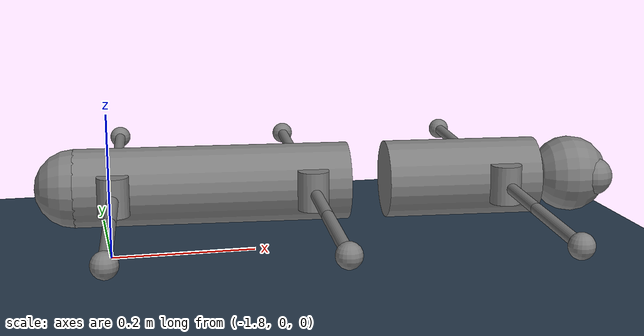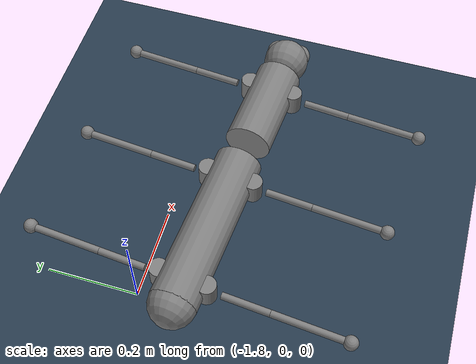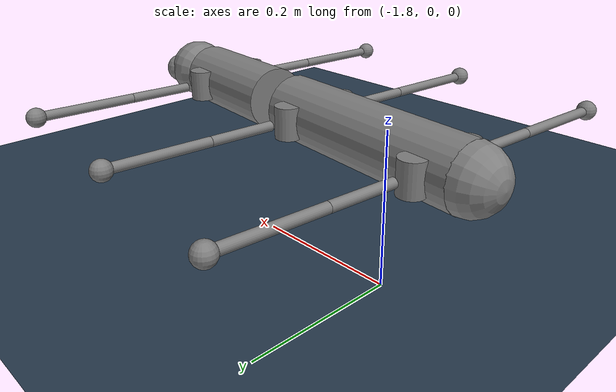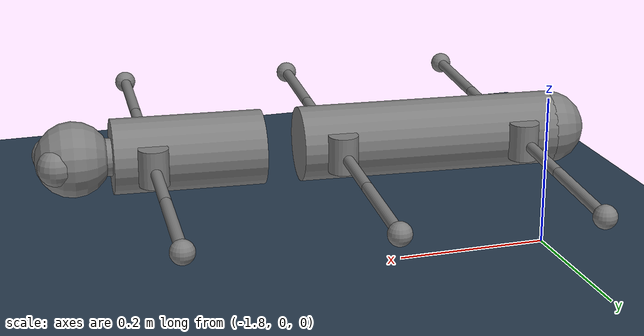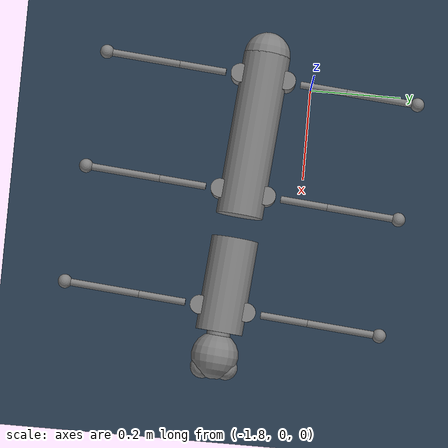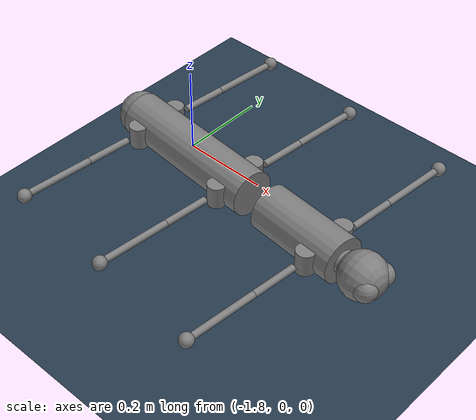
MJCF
<mujoco>
    <compiler meshdir="asset" texturedir="asset" />
    <statistic extent="1.5" meansize=".05" />

    <option timestep="0.005" jacobian="sparse" />

    <visual>
        <rgba haze="0.15 0.25 0.35 1" />
        <quality shadowsize="4096" />
        <map stiffness="700" shadowscale="0.5" fogstart="10" fogend="15" zfar="40" haze="0.3" />
    </visual>

    <asset>
        <texture type="skybox" builtin="gradient" rgb1="0.3 0.5 0.7" rgb2="0 0 0" width="512"
            height="512" />
        <texture name="texplane" type="2d" builtin="checker" rgb1=".2 .3 .4" rgb2=".1 0.15 0.2"
            width="512" height="512" mark="cross" markrgb=".8 .8 .8" />
        <material name="matplane" reflectance="0.3" texture="texplane" texrepeat="1 1"
            texuniform="true" />
    </asset>

    <worldbody>
        <geom name="Body" size="0.05 0.1" pos="-1.34983 -0.14564 0.125"
            quat="-0.706436 0.0308445 0.706432 0.0308437" type="cylinder" />
        <geom size="0.025" pos="-1.17538 -0.133716 0.124975"
            quat="0.923879 -9.37379e-08 -2.26303e-07 0.382684" />
        <geom size="0.05" pos="-1.20038 -0.158716 0.124975"
            quat="-0.706436 0.0308445 0.706432 0.0308438" />
        <geom size="0.025 0.025" pos="-1.25019 -0.154358 0.124976"
            quat="0.70643 0.0308438 0.706438 -0.0308445" type="cylinder" />
        <geom size="0.025" pos="-1.17538 -0.183716 0.124975"
            quat="0.92388 9.3738e-08 -2.26303e-07 -0.382683" />
        <body name="Bottom" pos="-1.47436 -0.134746 0.125001"
            quat="-0.706434 -0.706433 0.0308405 0.0308474">
            <inertial pos="-0.230605 -4e-06 0" quat="1 0 1.12974e-06 0" mass="0.005"
                diaginertia="6.62214e-05 6.62214e-05 5.87786e-06" />
            <joint name="Body_joint" pos="0 0 0" axis="0 0 1" />
            <geom name="Bottom" size="0.05 0.175" pos="-0.2 0 0"
                quat="-0.499999 0.499999 0.500001 -0.500001" type="cylinder" />
            <geom size="0.05" pos="-0.374975 -2.3e-05 1e-06"
                quat="0.305816 0.637558 0.305813 0.637554" />
            <geom size="0.025 0.025" pos="-0.324975 -2.3e-05 1e-06"
                quat="-0.305814 -0.637556 0.305814 0.637556" type="cylinder" />
            <body name="Coxa" pos="-0.075 -1e-06 -0.05" quat="0.5 -0.5 0.5 0.5">
                <inertial pos="0 0 0" mass="0.005" diaginertia="1.53846e-06 1.53846e-06 9.93595e-07" />
                <joint name="TL_joint1" pos="0 0 0" axis="0 0 1" />
                <geom name="Coxa" size="0.02 0.025" quat="-0.707107 2.44949e-07 0 0.707107"
                    type="cylinder" />
                <body name="Femur" pos="0.031 0 0" quat="0.707115 0.707098 4.62141e-07 1.41422e-06">
                    <inertial pos="0.049996 1e-06 -5e-06" mass="0.005"
                        diaginertia="4.23653e-06 4.23653e-06 1.39724e-07" />
                    <joint name="CL_joint1" pos="0 0 0" axis="0 0 1" />
                    <geom name="Femur" size="0.0075 0.05" pos="0.049996 1e-06 -5e-06"
                        quat="-0.707116 2.57244e-07 0.707098 4.49863e-07" type="cylinder" />
                    <body name="Tibia" pos="0.100001 -1e-06 0"
                        quat="1 -3.26795e-07 3.26795e-07 -8.26795e-07">
                        <inertial pos="0.10232 6e-06 -5e-06"
                            quat="0.297344 0.508832 -0.520004 0.618281" mass="0.005"
                            diaginertia="1.33917e-05 1.33912e-05 2.45476e-07" />
                        <joint name="FL_joint1" pos="0 0 0" axis="0 0 1" />
                        <geom name="Tibia" size="0.0075 0.075" pos="0.075016 6e-06 -5e-06"
                            quat="-0.707154 -2.49388e-06 0.707059 1.78677e-06" type="cylinder" />
                        <geom size="0.015" pos="0.154013 6e-06 -5e-06"
                            quat="-0.49999 0.499953 0.500009 0.500049" />
                    </body>
                </body>
            </body>
            <body name="Coxa_2" pos="-0.324968 -1.7e-05 -0.05" quat="0.5 -0.5 0.5 0.5">
                <inertial pos="0 0 0" mass="0.005" diaginertia="1.53846e-06 1.53846e-06 9.93595e-07" />
                <joint name="TL_joint2" pos="0 0 0" axis="0 0 1" />
                <geom size="0.02 0.025" quat="-0.707107 2.44949e-07 0 0.707107" type="cylinder" />
                <body name="Femur_2" pos="0.031 0 0"
                    quat="0.707115 0.707098 4.62141e-07 1.41422e-06">
                    <inertial pos="0.049996 1e-06 -5e-06" mass="0.005"
                        diaginertia="4.23653e-06 4.23653e-06 1.39724e-07" />
                    <joint name="CL_joint2" pos="0 0 0" axis="0 0 1" />
                    <geom size="0.0075 0.05" pos="0.049996 1e-06 -5e-06"
                        quat="-0.707116 2.57244e-07 0.707098 4.49863e-07" type="cylinder" />
                    <body name="Tibia_2" pos="0.100001 -1e-06 0"
                        quat="1 -3.26795e-07 3.26795e-07 -8.26795e-07">
                        <inertial pos="0.102321 6e-06 -4e-06"
                            quat="0.297981 0.509191 -0.520072 0.617622" mass="0.005"
                            diaginertia="1.33917e-05 1.33912e-05 2.45476e-07" />
                        <joint name="FL_joint2" pos="0 0 0" axis="0 0 1" />
                        <geom size="0.0075 0.075" pos="0.075016 6e-06 -4e-06"
                            quat="-0.707154 -2.45202e-06 0.707059 1.74491e-06" type="cylinder" />
                        <geom size="0.015" pos="0.154014 5e-06 -4e-06"
                            quat="-0.49999 0.499953 0.500009 0.500049" />
                    </body>
                </body>
            </body>
            <body name="Coxa_3" pos="-0.075 -3e-06 0.050001" quat="0.5 0.5 0.5 -0.5">
                <inertial pos="0 0 0" mass="0.005" diaginertia="1.53846e-06 1.53846e-06 9.93595e-07" />
                <joint name="TR_joint1" pos="0 0 0" axis="0 0 1" />
                <geom size="0.02 0.025" quat="-4.76028e-07 -0.707107 0.707107 2.31079e-07"
                    type="cylinder" />
                <body name="Femur_3" pos="-0.031 0 0"
                    quat="-4.76017e-07 9.38191e-07 0.707115 -0.707099">
                    <inertial pos="0.049996 1e-06 -5e-06" mass="0.005"
                        diaginertia="4.23653e-06 4.23653e-06 1.39724e-07" />
                    <joint name="CR_joint1" pos="0 0 0" axis="0 0 1" />
                    <geom size="0.0075 0.05" pos="0.049996 1e-06 -5e-06"
                        quat="-0.707116 2.57244e-07 0.707098 4.49863e-07" type="cylinder" />
                    <body name="Tibia_3" pos="0.100001 -1e-06 0"
                        quat="1 -3.26795e-07 3.26795e-07 -8.26795e-07">
                        <inertial pos="0.104039 7e-06 -4e-06"
                            quat="0.999999 1.83426e-05 -7.3606e-05 -0.00133042" mass="0.005"
                            diaginertia="1.4308e-05 1.43075e-05 2.45476e-07" />
                        <joint name="FR_joint1" pos="0 0 0" axis="0 0 1" />
                        <geom size="0.0075 0.075" pos="0.075016 6e-06 -4e-06"
                            quat="-0.707154 -2.49292e-06 0.707059 1.78582e-06" type="cylinder" />
                        <geom size="0.015" pos="0.158985 8e-06 -4e-06"
                            quat="0.500021 -0.500037 0.499978 0.499965" />
                    </body>
                </body>
            </body>
            <body name="Coxa_4" pos="-0.324965 -2.1e-05 0.050001"
                quat="-0.500001 -0.499999 -0.5 0.5">
                <inertial pos="0 0 0" mass="0.005" diaginertia="1.53846e-06 1.53846e-06 9.93595e-07" />
                <joint name="TR_joint2" pos="0 0 0" axis="0 0 1" />
                <geom size="0.02 0.025" quat="-4.76028e-07 -0.707107 0.707107 2.31079e-07"
                    type="cylinder" />
                <body name="Femur_4" pos="-0.031 0 0"
                    quat="-4.76017e-07 9.38191e-07 0.707115 -0.707099">
                    <inertial pos="0.049996 1e-06 -5e-06" mass="0.005"
                        diaginertia="4.23653e-06 4.23653e-06 1.39724e-07" />
                    <joint name="CR_joint2" pos="0 0 0" axis="0 0 1" />
                    <geom size="0.0075 0.05" pos="0.049996 1e-06 -5e-06"
                        quat="-0.707116 2.57244e-07 0.707098 4.49863e-07" type="cylinder" />
                    <body name="Tibia_4" pos="0.100001 -1e-06 0"
                        quat="1 -3.26795e-07 3.26795e-07 -8.26795e-07">
                        <inertial pos="0.104039 7e-06 -4e-06"
                            quat="0.708055 -1.61861e-05 -2.70841e-05 0.706157" mass="0.005"
                            diaginertia="1.4308e-05 1.43075e-05 2.45476e-07" />
                        <joint name="FR_joint2" pos="0 0 0" axis="0 0 1" />
                        <geom size="0.0075 0.075" pos="0.075016 6e-06 -5e-06"
                            quat="-0.707154 -2.50127e-06 0.707059 1.79416e-06" type="cylinder" />
                        <geom size="0.015" pos="0.158985 8e-06 -4e-06"
                            quat="0.500021 -0.500037 0.499978 0.499964" />
                    </body>
                </body>
            </body>
        </body>
        <body name="Coxa_5" pos="-1.29564 -0.100191 0.124977"
            quat="0.737278 3.00011e-06 3.87051e-06 0.67559">
            <inertial pos="0 0 0" mass="0.005" diaginertia="1.53846e-06 1.53846e-06 9.93595e-07" />
            <joint name="TL_joint0" pos="0 0 0" axis="0 0 1" />
            <geom size="0.02 0.025" quat="-0.707107 2.44949e-07 0 0.707107" type="cylinder" />
            <body name="Femur_5" pos="0.031 0 0" quat="0.707115 0.707098 4.62141e-07 1.41422e-06">
                <inertial pos="0.049996 1e-06 -5e-06" mass="0.005"
                    diaginertia="4.23653e-06 4.23653e-06 1.39724e-07" />
                <joint name="CL_joint0" pos="0 0 0" axis="0 0 1" />
                <geom size="0.0075 0.05" pos="0.049996 1e-06 -5e-06"
                    quat="-0.707116 2.57244e-07 0.707098 4.49863e-07" type="cylinder" />
                <body name="Tibia_5" pos="0.100001 -1e-06 0"
                    quat="1 -3.26795e-07 3.26795e-07 -8.26795e-07">
                    <inertial pos="0.102322 6e-06 1e-06" quat="0.297755 0.508846 -0.519967 0.618104"
                        mass="0.005" diaginertia="1.33914e-05 1.33909e-05 2.45476e-07" />
                    <joint name="FL_joint0" pos="0 0 0" axis="0 0 1" />
                    <geom size="0.0075 0.075" pos="0.075018 6e-06 -5e-06"
                        quat="-0.707153 -1.03082e-06 0.707061 3.23714e-07" type="cylinder" />
                    <geom size="0.015" pos="0.154014 6e-06 1.2e-05"
                        quat="-0.49999 0.499953 0.500009 0.500049" />
                </body>
            </body>
        </body>
        <body name="Coxa_6" pos="-1.30435 -0.199811 0.124973"
            quat="-1.71495e-06 0.737278 0.67559 -4.04921e-06">
            <inertial pos="0 0 0" mass="0.005" diaginertia="1.53846e-06 1.53846e-06 9.93595e-07" />
            <joint name="TR_joint0" pos="0 0 0" axis="0 0 1" />
            <geom size="0.02 0.025" quat="-4.76028e-07 -0.707107 0.707107 2.31079e-07"
                type="cylinder" />
            <body name="Femur_6" pos="-0.031 0 0" quat="-4.76017e-07 9.38191e-07 0.707115 -0.707099">
                <inertial pos="0.049996 1e-06 -5e-06" mass="0.005"
                    diaginertia="4.23653e-06 4.23653e-06 1.39724e-07" />
                <joint name="CR_joint0" pos="0 0 0" axis="0 0 1" />
                <geom size="0.0075 0.05" pos="0.049996 1e-06 -5e-06"
                    quat="-0.707116 2.57244e-07 0.707098 4.49863e-07" type="cylinder" />
                <body name="Tibia_6" pos="0.100001 -1e-06 0"
                    quat="1 -3.26795e-07 3.26795e-07 -8.26795e-07">
                    <inertial pos="0.104038 7e-06 -7e-06"
                        quat="0.705757 1.69107e-05 1.01312e-05 0.708454" mass="0.005"
                        diaginertia="1.43079e-05 1.43075e-05 2.45476e-07" />
                    <joint name="FR_joint0" pos="0 0 0" axis="0 0 1" />
                    <geom size="0.0075 0.075" pos="0.075015 6e-06 -4e-06"
                        quat="-0.707154 -2.52396e-06 0.707059 1.81685e-06" type="cylinder" />
                    <geom size="0.015" pos="0.158985 8e-06 -1.1e-05"
                        quat="0.500021 -0.500037 0.499978 0.499965" />
                </body>
            </body>
        </body>

        <light directional="true" diffuse=".4 .4 .4" specular="0.1 0.1 0.1" pos="0 0 5.0"
            dir="0 0 -1" castshadow="false" />
        <light directional="true" diffuse=".6 .6 .6" specular="0.2 0.2 0.2" pos="0 0 4" dir="0 0 -1" />

        <geom name="ground" type="plane" size="0 0 1" pos="0 0 0" quat="1 0 0 0" material="matplane"
            condim="1" />
        <body mocap="true" pos="-.1 .05 0" zaxis=".5 0 1">
        </body>
    </worldbody>
</mujoco>
